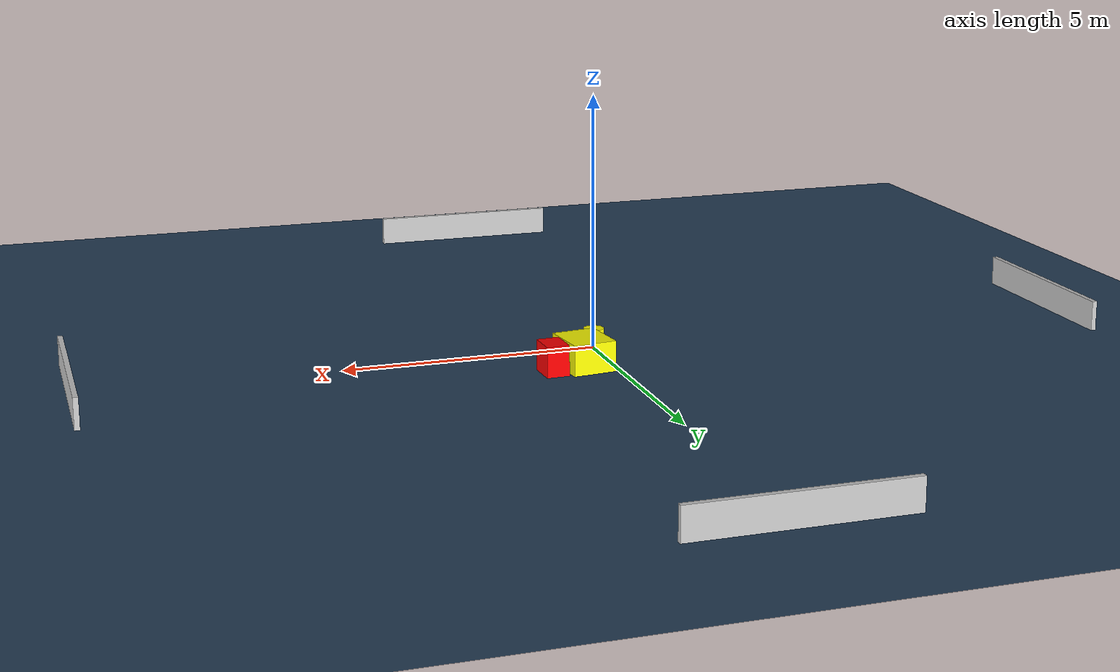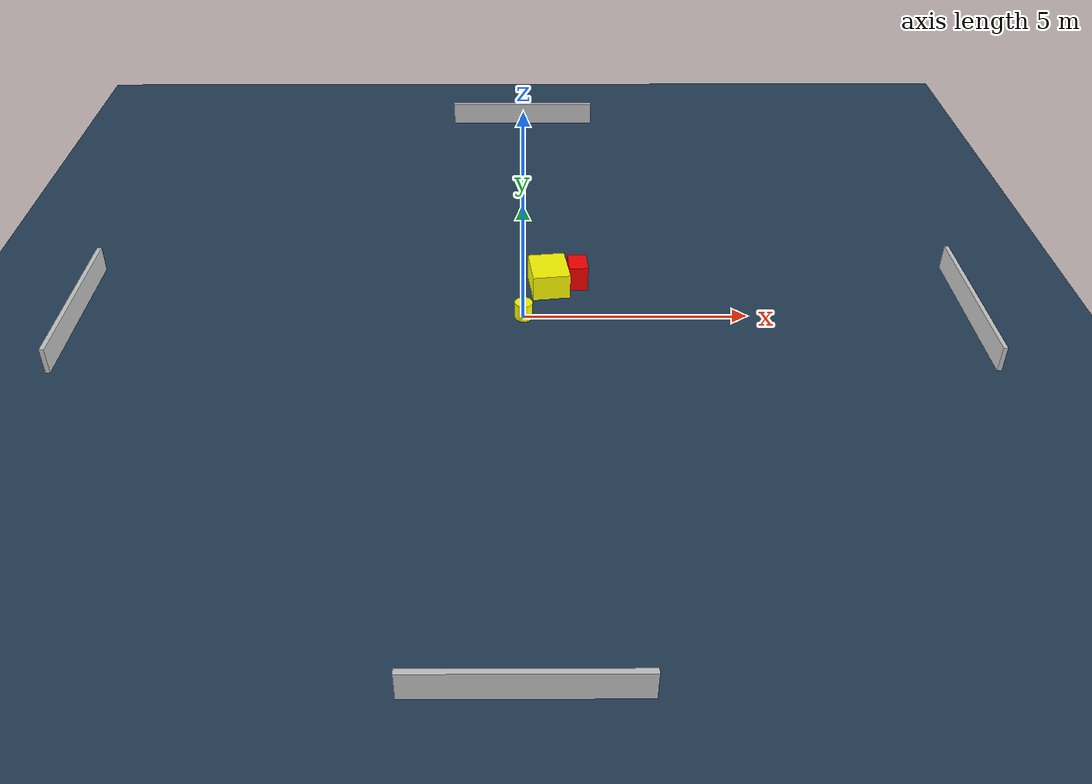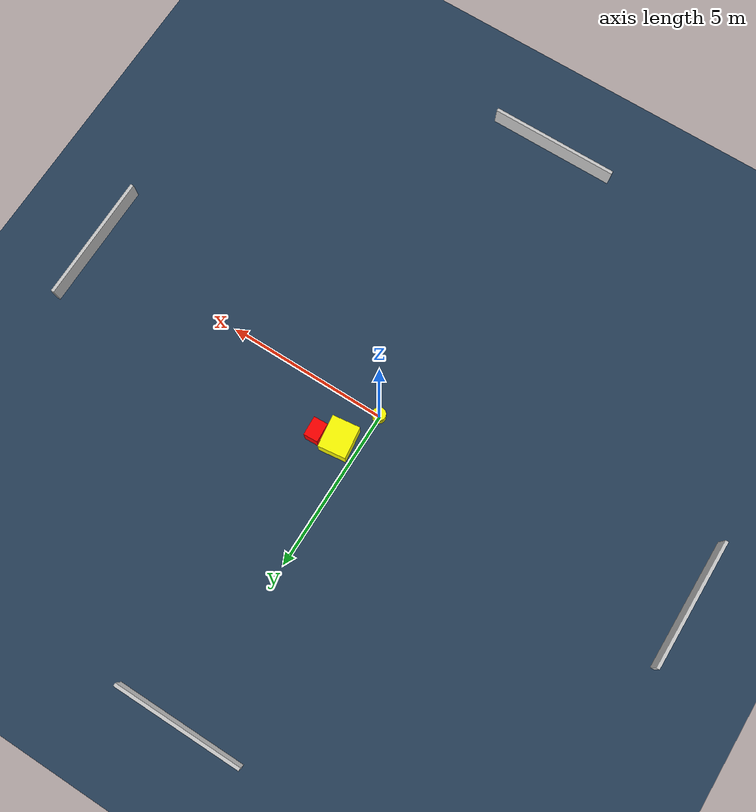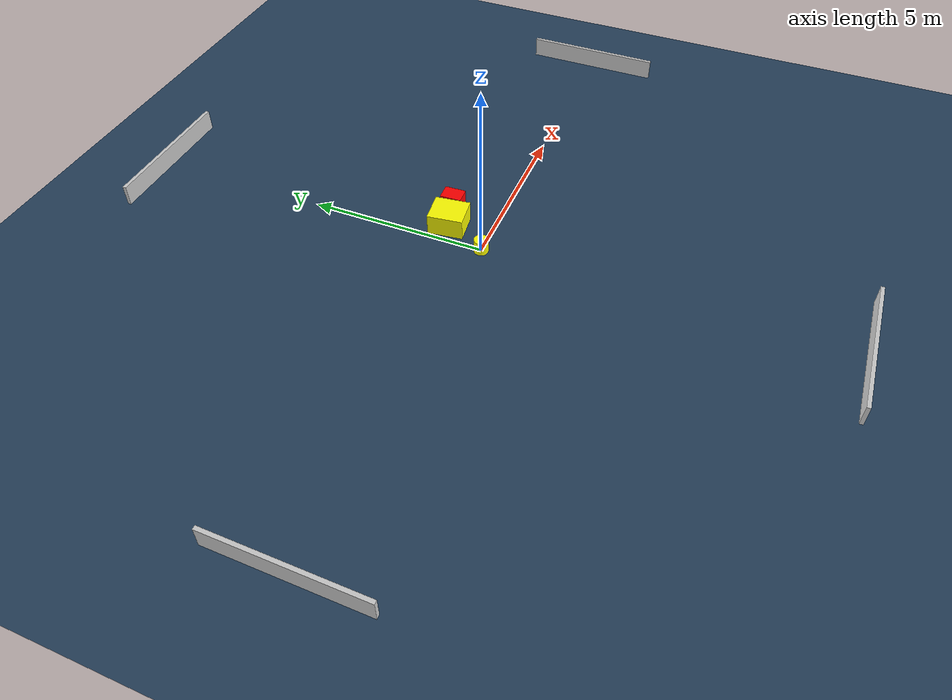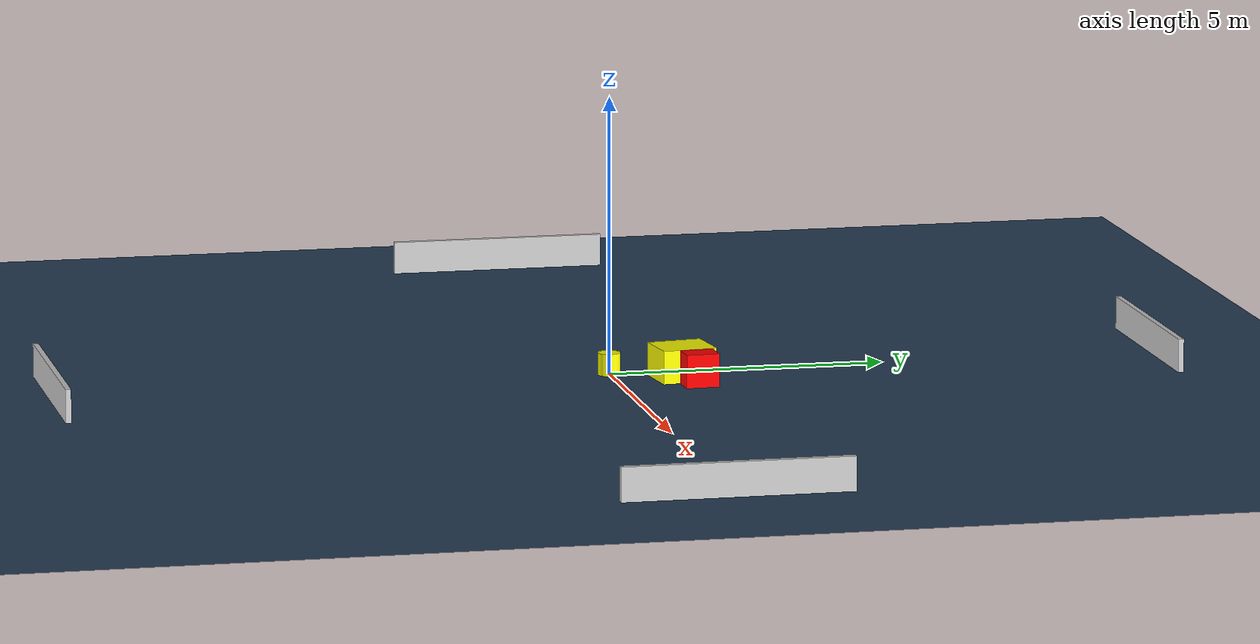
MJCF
<?xml version="1.0" ?>
<mujoco model="generated_environment">
  <option timestep="0.01" integrator="RK4" cone="elliptic"/>
  <default>
    <geom density="1"/>
  </default>
  <asset>
    <texture builtin="gradient" height="3072" name="skybox" rgb1="0.3 0.5 0.7" rgb2="0 0 0" type="skybox" width="512"/>
    <texture builtin="checker" height="300" name="groundplane" rgb1="0.2 0.3 0.4" rgb2="0.1 0.2 0.3" type="2d" width="300"/>
    <material name="groundplane" reflectance="0.2" texrepeat="5 5" texture="groundplane"/>
  </asset>
  <worldbody>
    <light dir="0 0 -1" directional="true" pos="0 0 1.5"/>
    <geom condim="3" friction="0.5 0.005 0.001" material="groundplane" name="floor" pos="0 0 0" size="0 0 0.05" type="plane"/>
    <body name="walls">
      <geom name="wall_1" condim="4" pos="-10.0 0.0 0.3" rgba="0.800000011920929 0.800000011920929 0.800000011920929 1.0" size="0.05 2.0 0.3" type="box"/>
      <geom name="wall_2" condim="4" pos="10.0 0.0 0.3" rgba="0.800000011920929 0.800000011920929 0.800000011920929 1.0" size="0.05 2.0 0.3" type="box"/>
      <geom name="wall_3" condim="4" pos="0.0 -10.0 0.3" rgba="0.800000011920929 0.800000011920929 0.800000011920929 1.0" size="2.0 0.05 0.3" type="box"/>
      <geom name="wall_4" condim="4" pos="0.0 10.0 0.3" rgba="0.800000011920929 0.800000011920929 0.800000011920929 1.0" size="2.0 0.05 0.3" type="box"/>
    </body>
    <body name="robot">
      <joint name="joint_x" type="slide" pos="0 0 0" axis="1 0 0"/>
      <joint name="joint_y" type="slide" pos="0 0 0" axis="0 1 0"/>
      <geom name="robot" type="cylinder" pos="0.0 0.0 0.2" size="0.2 0.2 0.0" mass="5.0" friction="1.0 0.005 0.0001" condim="4" rgba="1.0 1.0 0.0 1.0"/>
    </body>
    <body name="obstacle_1_movable">
      <geom name="obstacle_1_movable" condim="4" pos="0.585253471833932 1.1960312236364163 0.3" euler="0 0 187.07924135701637" friction="0.0 0.005 0.001" rgba="1.0 1.0 0.0 1.0" size="0.42748065216952097 0.49357752208411293 0.3" type="box" mass="0.1"/>
      <joint type="free"/>
    </body>
    <body name="obstacle_2_static">
      <geom name="obstacle_2_static" condim="4" pos="1.255829970575905 1.3618802121083242 0.3" euler="0 0 2.6466695225423953" friction="0.0 0.005 0.001" rgba="1.0 0.0 0.0 1.0" size="0.2207056922640782 0.2966022513876034 0.3" type="box"/>
    </body>
  </worldbody>
  <actuator>
    <motor name="actuator_x" joint="joint_x" gear="1" ctrlrange="-1 1"/>
    <motor name="actuator_y" joint="joint_y" gear="1" ctrlrange="-1 1"/>
  </actuator>
</mujoco>
